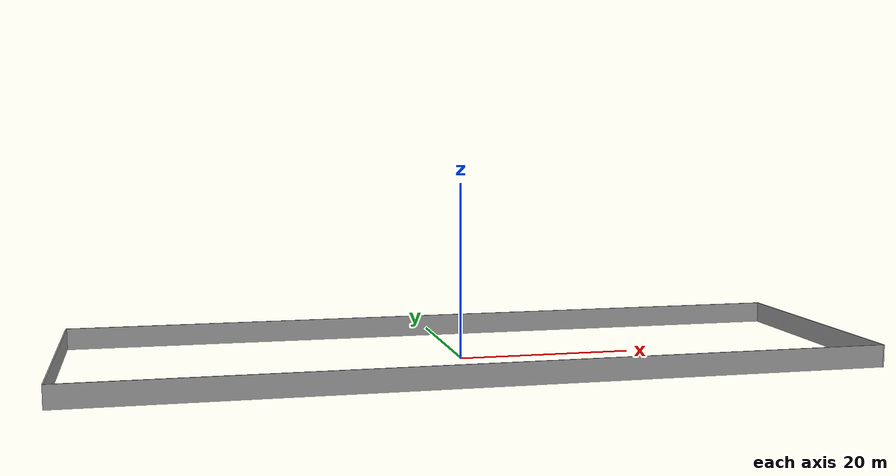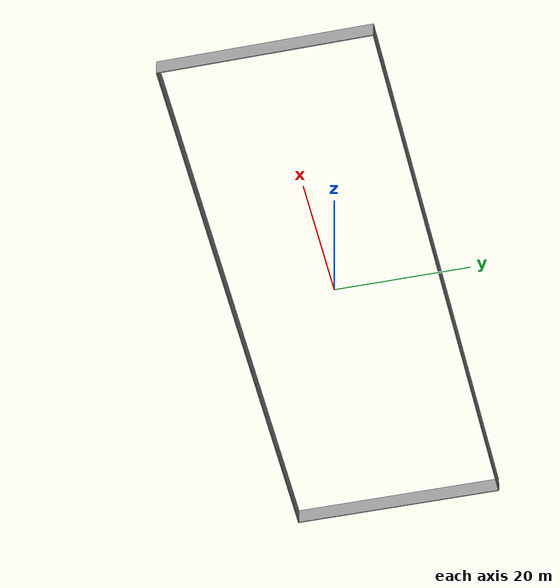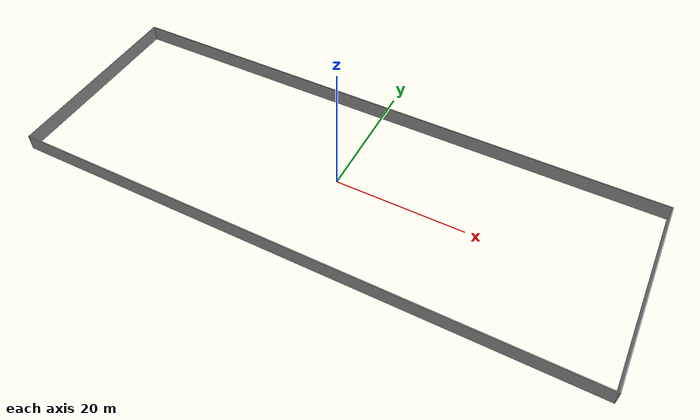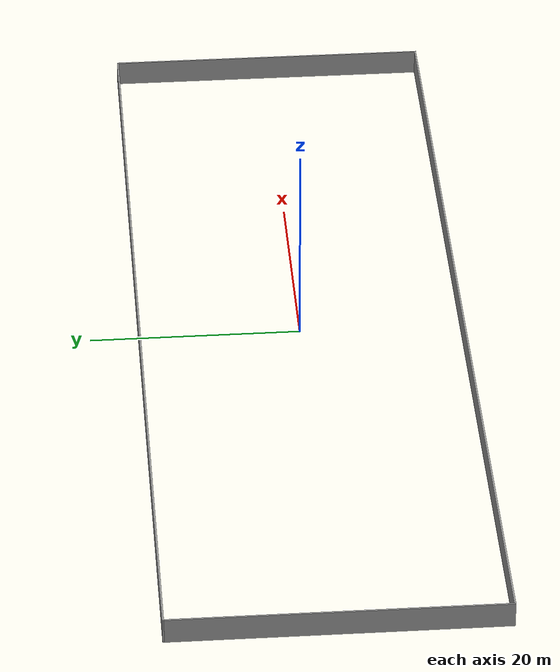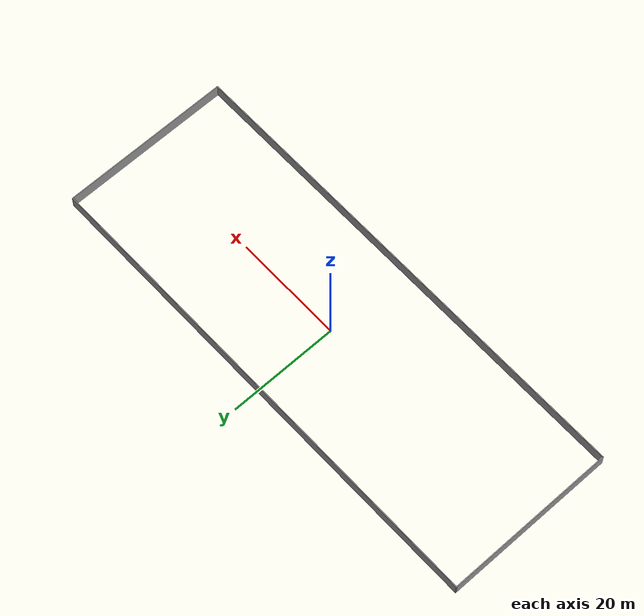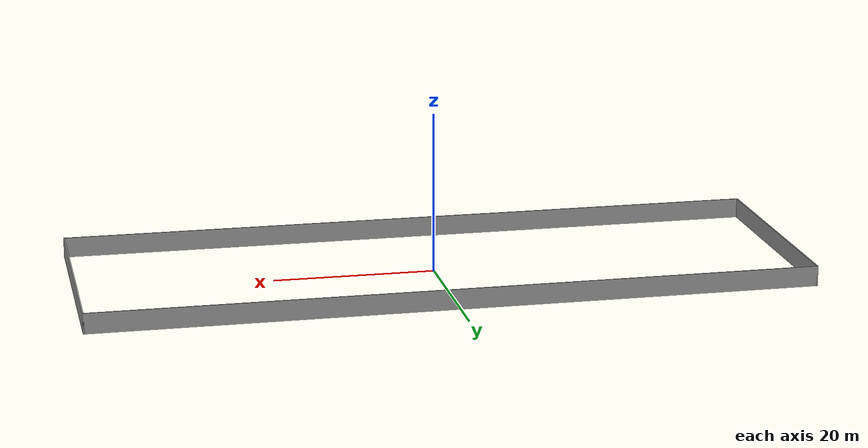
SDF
<?xml version='1.0'?>
<sdf version='1.7'>
  <model name='med_inv_real'>
    <pose>0 0 0 0 -0 0</pose>
    <link name='Wall_0'>
      <collision name='Wall_0_Collision'>
        <geometry>
          <box>
            <size>88.75 0.15 2.5</size>
          </box>
        </geometry>
        <pose>0 0 1.25 0 -0 0</pose>
      </collision>
      <visual name='Wall_0_Visual'>
        <pose>0 0 1.25 0 -0 0</pose>
        <geometry>
          <box>
            <size>88.75 0.15 2.5</size>
          </box>
        </geometry>
        <material>
          <script>
            <uri>file://media/materials/scripts/gazebo.material</uri>
            <name>Gazebo/Grey</name>
          </script>
          <ambient>1 1 1 1</ambient>
        </material>
        <meta>
          <layer>0</layer>
        </meta>
      </visual>
      <pose>0 15.375 0 0 -0 0</pose>
    </link>
    <link name='Wall_2'>
      <collision name='Wall_2_Collision'>
        <geometry>
          <box>
            <size>30.9 0.15 2.5</size>
          </box>
        </geometry>
        <pose>0 0 1.25 0 -0 0</pose>
      </collision>
      <visual name='Wall_2_Visual'>
        <pose>0 0 1.25 0 -0 0</pose>
        <geometry>
          <box>
            <size>30.9 0.15 2.5</size>
          </box>
        </geometry>
        <material>
          <script>
            <uri>file://media/materials/scripts/gazebo.material</uri>
            <name>Gazebo/Grey</name>
          </script>
          <ambient>1 1 1 1</ambient>
        </material>
        <meta>
          <layer>0</layer>
        </meta>
      </visual>
      <pose>-44.3 0 0 0 -0 -1.5708</pose>
    </link>
    <link name='Wall_3'>
      <collision name='Wall_3_Collision'>
        <geometry>
          <box>
            <size>88.75 0.15 2.5</size>
          </box>
        </geometry>
        <pose>0 0 1.25 0 -0 0</pose>
      </collision>
      <visual name='Wall_3_Visual'>
        <pose>0 0 1.25 0 -0 0</pose>
        <geometry>
          <box>
            <size>88.75 0.15 2.5</size>
          </box>
        </geometry>
        <material>
          <script>
            <uri>file://media/materials/scripts/gazebo.material</uri>
            <name>Gazebo/Grey</name>
          </script>
          <ambient>1 1 1 1</ambient>
        </material>
        <meta>
          <layer>0</layer>
        </meta>
      </visual>
      <pose>0 -15.375 0 0 -0 0</pose>
    </link>
    <link name='Wall_4'>
      <collision name='Wall_4_Collision'>
        <geometry>
          <box>
            <size>30.9 0.15 2.5</size>
          </box>
        </geometry>
        <pose>0 0 1.25 0 -0 0</pose>
      </collision>
      <visual name='Wall_4_Visual'>
        <pose>0 0 1.25 0 -0 0</pose>
        <geometry>
          <box>
            <size>30.9 0.15 2.5</size>
          </box>
        </geometry>
        <material>
          <script>
            <uri>file://media/materials/scripts/gazebo.material</uri>
            <name>Gazebo/Grey</name>
          </script>
          <ambient>1 1 1 1</ambient>
        </material>
        <meta>
          <layer>0</layer>
        </meta>
      </visual>
      <pose>44.3 0 0 0 -0 1.5708</pose>
    </link>
    <static>1</static>
  </model>
</sdf>
